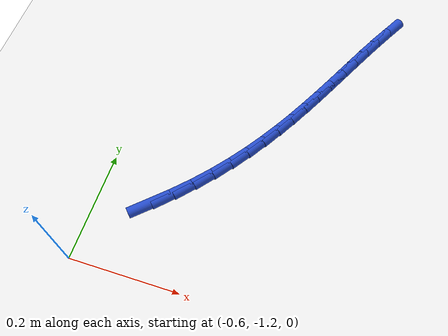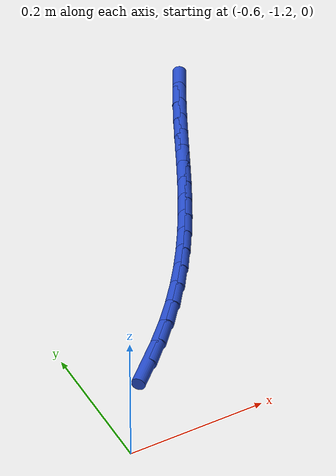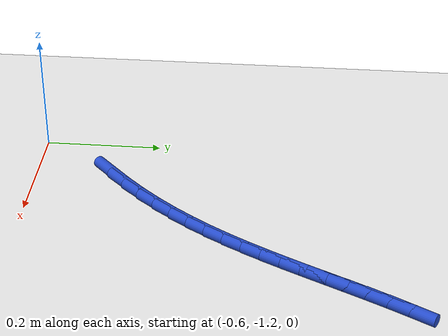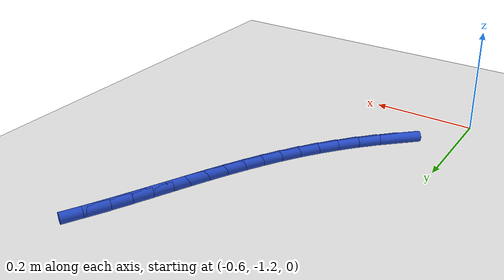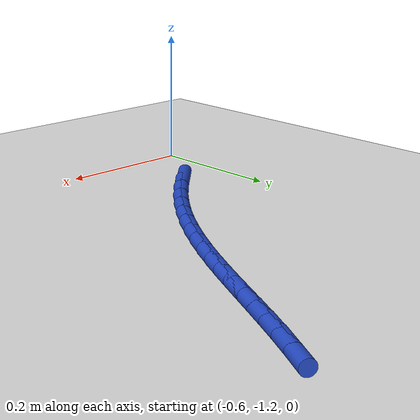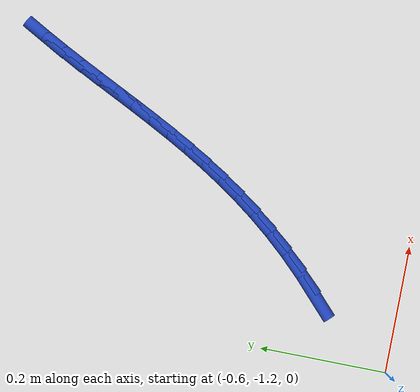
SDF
<sdf version="1.6">
 <world name="default">
  <model name="ground_plane">
   <static>1</static>
   <link name="link">
    <collision name="collision">
     <geometry><plane><normal>0 0 1</normal><size>100 100</size></plane></geometry>
     <surface><friction><ode><mu>100</mu><mu2>50</mu2></ode></friction></surface>
    </collision>
    <visual name="visual">
     <cast_shadows>0</cast_shadows>
     <geometry><plane><normal>0 0 1</normal><size>100 100</size></plane></geometry>
     <material>
      <script><uri>file://media/materials/scripts/gazebo.material</uri><name>Gazebo/WhiteGlow</name></script>
     </material>
    </visual>
   </link>
  </model>
  <model name="line">
   <link name="link_167">
    <pose>-0.5043229476697848 -1.0696983467498817 0.01 0 1.57 0.7547431087552853</pose>
    <collision name="collision">
     <geometry><cylinder><radius>0.01</radius><length>0.08</length></cylinder></geometry>
    </collision>
    <visual name="visual">
     <material>
      <script><name>Gazebo/Blue</name><uri>file://media/materials/scripts/gazebo.material</uri></script>
     </material>
     <geometry><cylinder><radius>0.01</radius><length>0.08</length></cylinder></geometry>
    </visual>
   </link>
   <link name="link_168">
    <pose>-0.47339947978949015 -1.0406149684514643 0.01 0 1.57 0.8011539424623255</pose>
    <collision name="collision">
     <geometry><cylinder><radius>0.01</radius><length>0.08</length></cylinder></geometry>
    </collision>
    <visual name="visual">
     <material>
      <script><name>Gazebo/Blue</name><uri>file://media/materials/scripts/gazebo.material</uri></script>
     </material>
     <geometry><cylinder><radius>0.01</radius><length>0.08</length></cylinder></geometry>
    </visual>
   </link>
   <link name="link_169">
    <pose>-0.4446969485060625 -1.010993419802171 0.01 0 1.57 0.8481409828259917</pose>
    <collision name="collision">
     <geometry><cylinder><radius>0.01</radius><length>0.08</length></cylinder></geometry>
    </collision>
    <visual name="visual">
     <material>
      <script><name>Gazebo/Blue</name><uri>file://media/materials/scripts/gazebo.material</uri></script>
     </material>
     <geometry><cylinder><radius>0.01</radius><length>0.08</length></cylinder></geometry>
    </visual>
   </link>
   <link name="link_170">
    <pose>-0.41833547801986387 -0.9810975671420105 0.01 0 1.57 0.8936442776935105</pose>
    <collision name="collision">
     <geometry><cylinder><radius>0.01</radius><length>0.08</length></cylinder></geometry>
    </collision>
    <visual name="visual">
     <material>
      <script><name>Gazebo/Blue</name><uri>file://media/materials/scripts/gazebo.material</uri></script>
     </material>
     <geometry><cylinder><radius>0.01</radius><length>0.08</length></cylinder></geometry>
    </visual>
   </link>
   <link name="link_171">
    <pose>-0.3941104286840689 -0.9509654795490531 0.01 0 1.57 0.9366695097890261</pose>
    <collision name="collision">
     <geometry><cylinder><radius>0.01</radius><length>0.08</length></cylinder></geometry>
    </collision>
    <visual name="visual">
     <material>
      <script><name>Gazebo/Blue</name><uri>file://media/materials/scripts/gazebo.material</uri></script>
     </material>
     <geometry><cylinder><radius>0.01</radius><length>0.08</length></cylinder></geometry>
    </visual>
   </link>
   <link name="link_172">
    <pose>-0.3717900382955816 -0.9206163687100823 0.01 0 1.57 0.976410003443324</pose>
    <collision name="collision">
     <geometry><cylinder><radius>0.01</radius><length>0.08</length></cylinder></geometry>
    </collision>
    <visual name="visual">
     <material>
      <script><name>Gazebo/Blue</name><uri>file://media/materials/scripts/gazebo.material</uri></script>
     </material>
     <geometry><cylinder><radius>0.01</radius><length>0.08</length></cylinder></geometry>
    </visual>
   </link>
   <link name="link_173">
    <pose>-0.35114254465130573 -0.8900694463118809 0.01 0 1.57 1.0121289628145795</pose>
    <collision name="collision">
     <geometry><cylinder><radius>0.01</radius><length>0.08</length></cylinder></geometry>
    </collision>
    <visual name="visual">
     <material>
      <script><name>Gazebo/Blue</name><uri>file://media/materials/scripts/gazebo.material</uri></script>
     </material>
     <geometry><cylinder><radius>0.01</radius><length>0.08</length></cylinder></geometry>
    </visual>
   </link>
   <link name="link_174">
    <pose>-0.3319361855481455 -0.8593439240412323 0.01 0 1.57 1.0431861010870112</pose>
    <collision name="collision">
     <geometry><cylinder><radius>0.01</radius><length>0.08</length></cylinder></geometry>
    </collision>
    <visual name="visual">
     <material>
      <script><name>Gazebo/Blue</name><uri>file://media/materials/scripts/gazebo.material</uri></script>
     </material>
     <geometry><cylinder><radius>0.01</radius><length>0.08</length></cylinder></geometry>
    </visual>
   </link>
   <link name="link_175">
    <pose>-0.3139391987830048 -0.8284590135849188 0.01 0 1.57 1.0690530380849839</pose>
    <collision name="collision">
     <geometry><cylinder><radius>0.01</radius><length>0.08</length></cylinder></geometry>
    </collision>
    <visual name="visual">
     <material>
      <script><name>Gazebo/Blue</name><uri>file://media/materials/scripts/gazebo.material</uri></script>
     </material>
     <geometry><cylinder><radius>0.01</radius><length>0.08</length></cylinder></geometry>
    </visual>
   </link>
   <link name="link_176">
    <pose>-0.2969198221527874 -0.7974339266297236 0.01 0 1.57 1.0893183113466065</pose>
    <collision name="collision">
     <geometry><cylinder><radius>0.01</radius><length>0.08</length></cylinder></geometry>
    </collision>
    <visual name="visual">
     <material>
      <script><name>Gazebo/Blue</name><uri>file://media/materials/scripts/gazebo.material</uri></script>
     </material>
     <geometry><cylinder><radius>0.01</radius><length>0.08</length></cylinder></geometry>
    </visual>
   </link>
   <link name="link_177">
    <pose>-0.2806462934543974 -0.7662878748624297 0.01 0 1.57 1.1036846608052135</pose>
    <collision name="collision">
     <geometry><cylinder><radius>0.01</radius><length>0.08</length></cylinder></geometry>
    </collision>
    <visual name="visual">
     <material>
      <script><name>Gazebo/Blue</name><uri>file://media/materials/scripts/gazebo.material</uri></script>
     </material>
     <geometry><cylinder><radius>0.01</radius><length>0.08</length></cylinder></geometry>
    </visual>
   </link>
   <link name="link_178">
    <pose>-0.26488685048473887 -0.7350400699698202 0.01 0 1.57 1.1119620665219296</pose>
    <collision name="collision">
     <geometry><cylinder><radius>0.01</radius><length>0.08</length></cylinder></geometry>
    </collision>
    <visual name="visual">
     <material>
      <script><name>Gazebo/Blue</name><uri>file://media/materials/scripts/gazebo.material</uri></script>
     </material>
     <geometry><cylinder><radius>0.01</radius><length>0.08</length></cylinder></geometry>
    </visual>
   </link>
   <link name="link_179">
    <pose>-0.24940973104071562 -0.7037097236386779 0.01 0 1.57 1.11405990828921</pose>
    <collision name="collision">
     <geometry><cylinder><radius>0.01</radius><length>0.08</length></cylinder></geometry>
    </collision>
    <visual name="visual">
     <material>
      <script><name>Gazebo/Blue</name><uri>file://media/materials/scripts/gazebo.material</uri></script>
     </material>
     <geometry><cylinder><radius>0.01</radius><length>0.08</length></cylinder></geometry>
    </visual>
   </link>
   <link name="link_180">
    <pose>-0.23398317291923168 -0.6723160475557859 0.01 0 1.57 1.1099808542553682</pose>
    <collision name="collision">
     <geometry><cylinder><radius>0.01</radius><length>0.08</length></cylinder></geometry>
    </collision>
    <visual name="visual">
     <material>
      <script><name>Gazebo/Blue</name><uri>file://media/materials/scripts/gazebo.material</uri></script>
     </material>
     <geometry><cylinder><radius>0.01</radius><length>0.08</length></cylinder></geometry>
    </visual>
   </link>
   <link name="link_181">
    <pose>-0.21837541391719095 -0.6408782534079269 0.01 0 1.57 1.0998179806390087</pose>
    <collision name="collision">
     <geometry><cylinder><radius>0.01</radius><length>0.08</length></cylinder></geometry>
    </collision>
    <visual name="visual">
     <material>
      <script><name>Gazebo/Blue</name><uri>file://media/materials/scripts/gazebo.material</uri></script>
     </material>
     <geometry><cylinder><radius>0.01</radius><length>0.08</length></cylinder></geometry>
    </visual>
   </link>
   <link name="link_182">
    <pose>-0.20235469183149746 -0.6094155528818842 0.01 0 1.57 1.0838293216252086</pose>
    <collision name="collision">
     <geometry><cylinder><radius>0.01</radius><length>0.08</length></cylinder></geometry>
    </collision>
    <visual name="visual">
     <material>
      <script><name>Gazebo/Blue</name><uri>file://media/materials/scripts/gazebo.material</uri></script>
     </material>
     <geometry><cylinder><radius>0.01</radius><length>0.08</length></cylinder></geometry>
    </visual>
   </link>
   <link name="link_183">
    <pose>-0.1856920048624873 -0.5779467464148952 0.01 0 1.57 1.067375061324525</pose>
    <collision name="collision">
     <geometry><cylinder><radius>0.01</radius><length>0.08</length></cylinder></geometry>
    </collision>
    <visual name="visual">
     <material>
      <script><name>Gazebo/Blue</name><uri>file://media/materials/scripts/gazebo.material</uri></script>
     </material>
     <geometry><cylinder><radius>0.01</radius><length>0.08</length></cylinder></geometry>
    </visual>
   </link>
  </model>
 </world>
</sdf>
